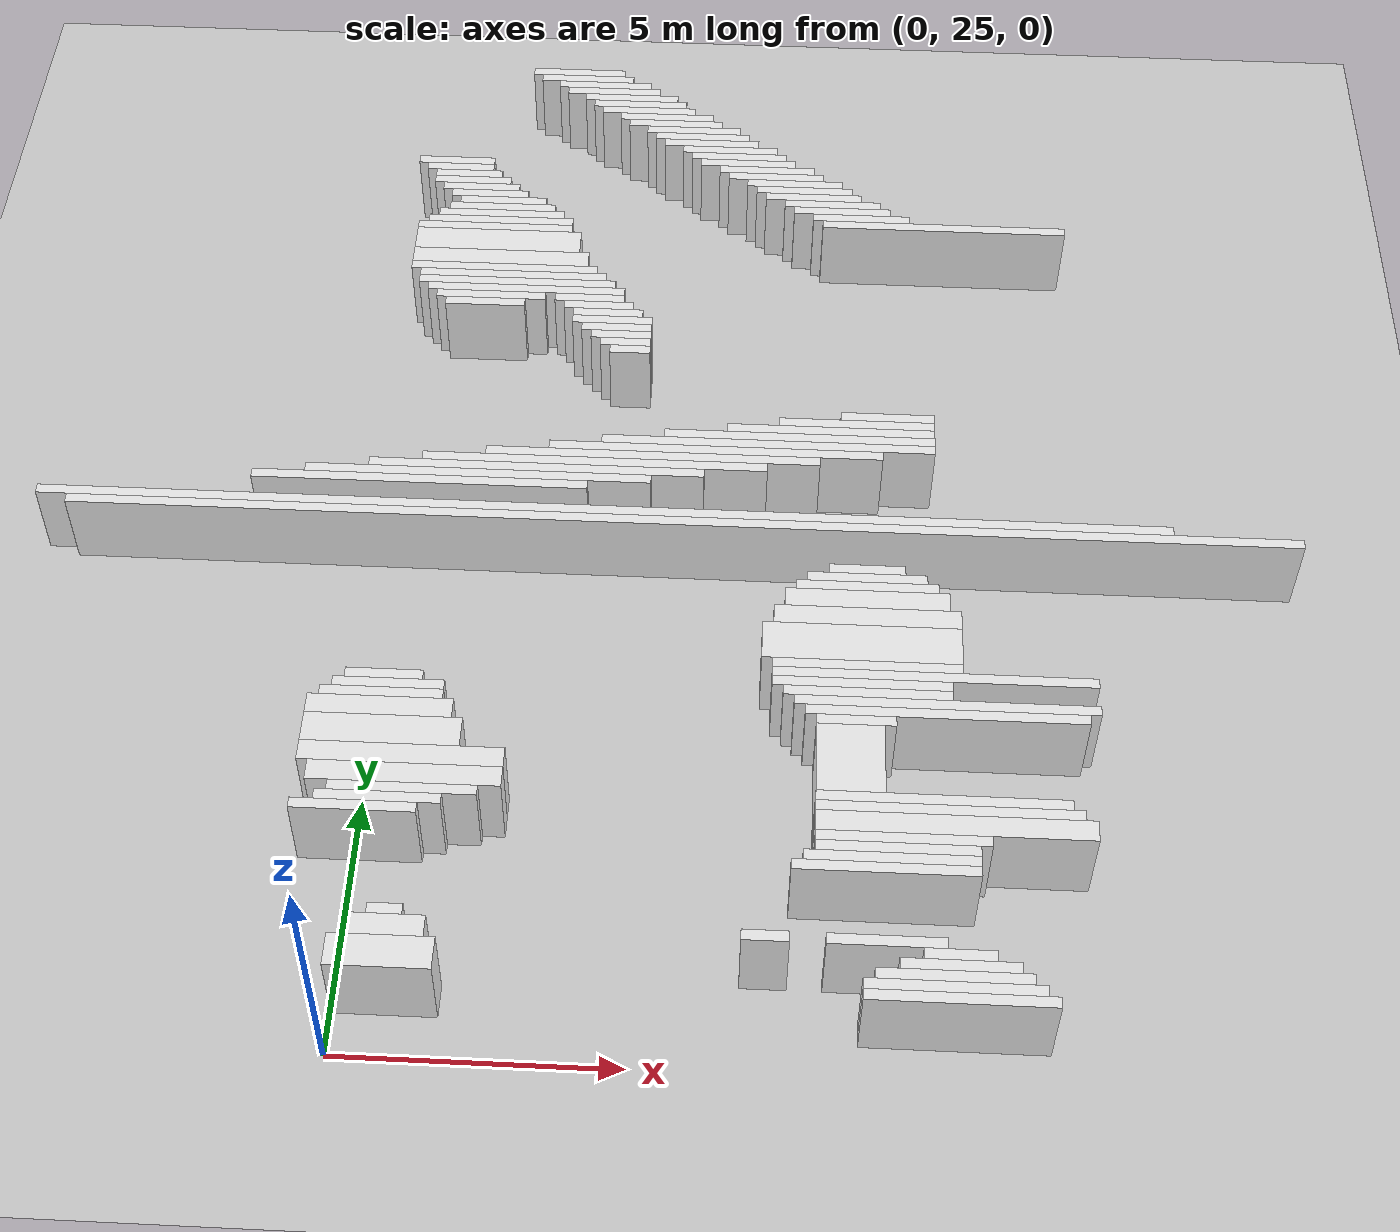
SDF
<sdf version="1.7">
 <world name="default">
  <model name="ground_plane">
   <static>1</static>
   <link name="link">
    <collision name="collision">
     <geometry><plane><normal>0 0 1</normal><size>120 120</size></plane></geometry>
    </collision>
    <visual name="visual">
     <geometry><plane><normal>0 0 1</normal><size>120 120</size></plane></geometry>
     <material>
      <script><uri>file://media/materials/scripts/gazebo.material</uri><name>Gazebo/Grey</name></script>
     </material>
    </visual>
   </link>
  </model>
  <model name="random_complex_01_model">
   <static>1</static>
   <link name="obs_5">
    <pose>2.6000 48.3000 0.8000 0 0 0</pose>
    <collision name="obs_5_col"><geometry><box><size>2.0000 0.2000 1.6000</size></box></geometry></collision>
    <visual name="obs_5_vis">
     <geometry><box><size>2.0000 0.2000 1.6000</size></box></geometry>
     <material>
      <script><uri>file://media/materials/scripts/gazebo.material</uri><name>Gazebo/White</name></script>
     </material>
    </visual>
   </link>
   <link name="obs_12">
    <pose>2.8000 48.1000 0.8000 0 0 0</pose>
    <collision name="obs_12_col"><geometry><box><size>2.0000 0.2000 1.6000</size></box></geometry></collision>
    <visual name="obs_12_vis">
     <geometry><box><size>2.0000 0.2000 1.6000</size></box></geometry>
     <material>
      <script><uri>file://media/materials/scripts/gazebo.material</uri><name>Gazebo/White</name></script>
     </material>
    </visual>
   </link>
   <link name="obs_20">
    <pose>3.2000 47.9000 0.8000 0 0 0</pose>
    <collision name="obs_20_col"><geometry><box><size>2.0000 0.2000 1.6000</size></box></geometry></collision>
    <visual name="obs_20_vis">
     <geometry><box><size>2.0000 0.2000 1.6000</size></box></geometry>
     <material>
      <script><uri>file://media/materials/scripts/gazebo.material</uri><name>Gazebo/White</name></script>
     </material>
    </visual>
   </link>
   <link name="obs_26">
    <pose>3.4000 47.7000 0.8000 0 0 0</pose>
    <collision name="obs_26_col"><geometry><box><size>2.0000 0.2000 1.6000</size></box></geometry></collision>
    <visual name="obs_26_vis">
     <geometry><box><size>2.0000 0.2000 1.6000</size></box></geometry>
     <material>
      <script><uri>file://media/materials/scripts/gazebo.material</uri><name>Gazebo/White</name></script>
     </material>
    </visual>
   </link>
   <link name="obs_33">
    <pose>3.8000 47.5000 0.8000 0 0 0</pose>
    <collision name="obs_33_col"><geometry><box><size>2.0000 0.2000 1.6000</size></box></geometry></collision>
    <visual name="obs_33_vis">
     <geometry><box><size>2.0000 0.2000 1.6000</size></box></geometry>
     <material>
      <script><uri>file://media/materials/scripts/gazebo.material</uri><name>Gazebo/White</name></script>
     </material>
    </visual>
   </link>
   <link name="obs_40">
    <pose>4.0000 47.3000 0.8000 0 0 0</pose>
    <collision name="obs_40_col"><geometry><box><size>2.0000 0.2000 1.6000</size></box></geometry></collision>
    <visual name="obs_40_vis">
     <geometry><box><size>2.0000 0.2000 1.6000</size></box></geometry>
     <material>
      <script><uri>file://media/materials/scripts/gazebo.material</uri><name>Gazebo/White</name></script>
     </material>
    </visual>
   </link>
   <link name="obs_46">
    <pose>4.2000 47.1000 0.8000 0 0 0</pose>
    <collision name="obs_46_col"><geometry><box><size>2.0000 0.2000 1.6000</size></box></geometry></collision>
    <visual name="obs_46_vis">
     <geometry><box><size>2.0000 0.2000 1.6000</size></box></geometry>
     <material>
      <script><uri>file://media/materials/scripts/gazebo.material</uri><name>Gazebo/White</name></script>
     </material>
    </visual>
   </link>
   <link name="obs_53">
    <pose>4.6000 46.9000 0.8000 0 0 0</pose>
    <collision name="obs_53_col"><geometry><box><size>2.0000 0.2000 1.6000</size></box></geometry></collision>
    <visual name="obs_53_vis">
     <geometry><box><size>2.0000 0.2000 1.6000</size></box></geometry>
     <material>
      <script><uri>file://media/materials/scripts/gazebo.material</uri><name>Gazebo/White</name></script>
     </material>
    </visual>
   </link>
   <link name="obs_60">
    <pose>4.8000 46.7000 0.8000 0 0 0</pose>
    <collision name="obs_60_col"><geometry><box><size>2.0000 0.2000 1.6000</size></box></geometry></collision>
    <visual name="obs_60_vis">
     <geometry><box><size>2.0000 0.2000 1.6000</size></box></geometry>
     <material>
      <script><uri>file://media/materials/scripts/gazebo.material</uri><name>Gazebo/White</name></script>
     </material>
    </visual>
   </link>
   <link name="obs_67">
    <pose>5.2000 46.5000 0.8000 0 0 0</pose>
    <collision name="obs_67_col"><geometry><box><size>2.0000 0.2000 1.6000</size></box></geometry></collision>
    <visual name="obs_67_vis">
     <geometry><box><size>2.0000 0.2000 1.6000</size></box></geometry>
     <material>
      <script><uri>file://media/materials/scripts/gazebo.material</uri><name>Gazebo/White</name></script>
     </material>
    </visual>
   </link>
   <link name="obs_74">
    <pose>5.4000 46.3000 0.8000 0 0 0</pose>
    <collision name="obs_74_col"><geometry><box><size>2.0000 0.2000 1.6000</size></box></geometry></collision>
    <visual name="obs_74_vis">
     <geometry><box><size>2.0000 0.2000 1.6000</size></box></geometry>
     <material>
      <script><uri>file://media/materials/scripts/gazebo.material</uri><name>Gazebo/White</name></script>
     </material>
    </visual>
   </link>
   <link name="obs_84">
    <pose>5.6000 46.1000 0.8000 0 0 0</pose>
    <collision name="obs_84_col"><geometry><box><size>2.0000 0.2000 1.6000</size></box></geometry></collision>
    <visual name="obs_84_vis">
     <geometry><box><size>2.0000 0.2000 1.6000</size></box></geometry>
     <material>
      <script><uri>file://media/materials/scripts/gazebo.material</uri><name>Gazebo/White</name></script>
     </material>
    </visual>
   </link>
   <link name="obs_94">
    <pose>6.0000 45.9000 0.8000 0 0 0</pose>
    <collision name="obs_94_col"><geometry><box><size>2.0000 0.2000 1.6000</size></box></geometry></collision>
    <visual name="obs_94_vis">
     <geometry><box><size>2.0000 0.2000 1.6000</size></box></geometry>
     <material>
      <script><uri>file://media/materials/scripts/gazebo.material</uri><name>Gazebo/White</name></script>
     </material>
    </visual>
   </link>
   <link name="obs_102">
    <pose>6.2000 45.7000 0.8000 0 0 0</pose>
    <collision name="obs_102_col"><geometry><box><size>2.0000 0.2000 1.6000</size></box></geometry></collision>
    <visual name="obs_102_vis">
     <geometry><box><size>2.0000 0.2000 1.6000</size></box></geometry>
     <material>
      <script><uri>file://media/materials/scripts/gazebo.material</uri><name>Gazebo/White</name></script>
     </material>
    </visual>
   </link>
   <link name="obs_113">
    <pose>6.4000 45.5000 0.8000 0 0 0</pose>
    <collision name="obs_113_col"><geometry><box><size>2.0000 0.2000 1.6000</size></box></geometry></collision>
    <visual name="obs_113_vis">
     <geometry><box><size>2.0000 0.2000 1.6000</size></box></geometry>
     <material>
      <script><uri>file://media/materials/scripts/gazebo.material</uri><name>Gazebo/White</name></script>
     </material>
    </visual>
   </link>
   <link name="obs_120">
    <pose>0.2000 45.3000 0.8000 0 0 0</pose>
    <collision name="obs_120_col"><geometry><box><size>1.6000 0.2000 1.6000</size></box></geometry></collision>
    <visual name="obs_120_vis">
     <geometry><box><size>1.6000 0.2000 1.6000</size></box></geometry>
     <material>
      <script><uri>file://media/materials/scripts/gazebo.material</uri><name>Gazebo/White</name></script>
     </material>
    </visual>
   </link>
   <link name="obs_121">
    <pose>6.8000 45.3000 0.8000 0 0 0</pose>
    <collision name="obs_121_col"><geometry><box><size>2.0000 0.2000 1.6000</size></box></geometry></collision>
    <visual name="obs_121_vis">
     <geometry><box><size>2.0000 0.2000 1.6000</size></box></geometry>
     <material>
      <script><uri>file://media/materials/scripts/gazebo.material</uri><name>Gazebo/White</name></script>
     </material>
    </visual>
   </link>
   <link name="obs_130">
    <pose>0.3000 45.1000 0.8000 0 0 0</pose>
    <collision name="obs_130_col"><geometry><box><size>1.4000 0.2000 1.6000</size></box></geometry></collision>
    <visual name="obs_130_vis">
     <geometry><box><size>1.4000 0.2000 1.6000</size></box></geometry>
     <material>
      <script><uri>file://media/materials/scripts/gazebo.material</uri><name>Gazebo/White</name></script>
     </material>
    </visual>
   </link>
   <link name="obs_131">
    <pose>7.0000 45.1000 0.8000 0 0 0</pose>
    <collision name="obs_131_col"><geometry><box><size>2.0000 0.2000 1.6000</size></box></geometry></collision>
    <visual name="obs_131_vis">
     <geometry><box><size>2.0000 0.2000 1.6000</size></box></geometry>
     <material>
      <script><uri>file://media/materials/scripts/gazebo.material</uri><name>Gazebo/White</name></script>
     </material>
    </visual>
   </link>
   <link name="obs_138">
    <pose>0.5000 44.9000 0.8000 0 0 0</pose>
    <collision name="obs_138_col"><geometry><box><size>1.4000 0.2000 1.6000</size></box></geometry></collision>
    <visual name="obs_138_vis">
     <geometry><box><size>1.4000 0.2000 1.6000</size></box></geometry>
     <material>
      <script><uri>file://media/materials/scripts/gazebo.material</uri><name>Gazebo/White</name></script>
     </material>
    </visual>
   </link>
   <link name="obs_139">
    <pose>7.4000 44.9000 0.8000 0 0 0</pose>
    <collision name="obs_139_col"><geometry><box><size>2.0000 0.2000 1.6000</size></box></geometry></collision>
    <visual name="obs_139_vis">
     <geometry><box><size>2.0000 0.2000 1.6000</size></box></geometry>
     <material>
      <script><uri>file://media/materials/scripts/gazebo.material</uri><name>Gazebo/White</name></script>
     </material>
    </visual>
   </link>
   <link name="obs_147">
    <pose>0.6000 44.7000 0.8000 0 0 0</pose>
    <collision name="obs_147_col"><geometry><box><size>1.6000 0.2000 1.6000</size></box></geometry></collision>
    <visual name="obs_147_vis">
     <geometry><box><size>1.6000 0.2000 1.6000</size></box></geometry>
     <material>
      <script><uri>file://media/materials/scripts/gazebo.material</uri><name>Gazebo/White</name></script>
     </material>
    </visual>
   </link>
   <link name="obs_148">
    <pose>7.6000 44.7000 0.8000 0 0 0</pose>
    <collision name="obs_148_col"><geometry><box><size>2.0000 0.2000 1.6000</size></box></geometry></collision>
    <visual name="obs_148_vis">
     <geometry><box><size>2.0000 0.2000 1.6000</size></box></geometry>
     <material>
      <script><uri>file://media/materials/scripts/gazebo.material</uri><name>Gazebo/White</name></script>
     </material>
    </visual>
   </link>
   <link name="obs_154">
    <pose>0.8000 44.5000 0.8000 0 0 0</pose>
    <collision name="obs_154_col"><geometry><box><size>1.6000 0.2000 1.6000</size></box></geometry></collision>
    <visual name="obs_154_vis">
     <geometry><box><size>1.6000 0.2000 1.6000</size></box></geometry>
     <material>
      <script><uri>file://media/materials/scripts/gazebo.material</uri><name>Gazebo/White</name></script>
     </material>
    </visual>
   </link>
   <link name="obs_155">
    <pose>7.8000 44.5000 0.8000 0 0 0</pose>
    <collision name="obs_155_col"><geometry><box><size>2.0000 0.2000 1.6000</size></box></geometry></collision>
    <visual name="obs_155_vis">
     <geometry><box><size>2.0000 0.2000 1.6000</size></box></geometry>
     <material>
      <script><uri>file://media/materials/scripts/gazebo.material</uri><name>Gazebo/White</name></script>
     </material>
    </visual>
   </link>
   <link name="obs_160">
    <pose>1.0000 44.3000 0.8000 0 0 0</pose>
    <collision name="obs_160_col"><geometry><box><size>1.6000 0.2000 1.6000</size></box></geometry></collision>
    <visual name="obs_160_vis">
     <geometry><box><size>1.6000 0.2000 1.6000</size></box></geometry>
     <material>
      <script><uri>file://media/materials/scripts/gazebo.material</uri><name>Gazebo/White</name></script>
     </material>
    </visual>
   </link>
   <link name="obs_161">
    <pose>8.2000 44.3000 0.8000 0 0 0</pose>
    <collision name="obs_161_col"><geometry><box><size>2.0000 0.2000 1.6000</size></box></geometry></collision>
    <visual name="obs_161_vis">
     <geometry><box><size>2.0000 0.2000 1.6000</size></box></geometry>
     <material>
      <script><uri>file://media/materials/scripts/gazebo.material</uri><name>Gazebo/White</name></script>
     </material>
    </visual>
   </link>
   <link name="obs_166">
    <pose>1.3000 44.1000 0.8000 0 0 0</pose>
    <collision name="obs_166_col"><geometry><box><size>1.8000 0.2000 1.6000</size></box></geometry></collision>
    <visual name="obs_166_vis">
     <geometry><box><size>1.8000 0.2000 1.6000</size></box></geometry>
     <material>
      <script><uri>file://media/materials/scripts/gazebo.material</uri><name>Gazebo/White</name></script>
     </material>
    </visual>
   </link>
   <link name="obs_167">
    <pose>8.4000 44.1000 0.8000 0 0 0</pose>
    <collision name="obs_167_col"><geometry><box><size>2.0000 0.2000 1.6000</size></box></geometry></collision>
    <visual name="obs_167_vis">
     <geometry><box><size>2.0000 0.2000 1.6000</size></box></geometry>
     <material>
      <script><uri>file://media/materials/scripts/gazebo.material</uri><name>Gazebo/White</name></script>
     </material>
    </visual>
   </link>
   <link name="obs_174">
    <pose>1.3000 43.9000 0.8000 0 0 0</pose>
    <collision name="obs_174_col"><geometry><box><size>2.2000 0.2000 1.6000</size></box></geometry></collision>
    <visual name="obs_174_vis">
     <geometry><box><size>2.2000 0.2000 1.6000</size></box></geometry>
     <material>
      <script><uri>file://media/materials/scripts/gazebo.material</uri><name>Gazebo/White</name></script>
     </material>
    </visual>
   </link>
   <link name="obs_175">
    <pose>8.8000 43.9000 0.8000 0 0 0</pose>
    <collision name="obs_175_col"><geometry><box><size>2.0000 0.2000 1.6000</size></box></geometry></collision>
    <visual name="obs_175_vis">
     <geometry><box><size>2.0000 0.2000 1.6000</size></box></geometry>
     <material>
      <script><uri>file://media/materials/scripts/gazebo.material</uri><name>Gazebo/White</name></script>
     </material>
    </visual>
   </link>
   <link name="obs_182">
    <pose>1.3000 43.7000 0.8000 0 0 0</pose>
    <collision name="obs_182_col"><geometry><box><size>2.6000 0.2000 1.6000</size></box></geometry></collision>
    <visual name="obs_182_vis">
     <geometry><box><size>2.6000 0.2000 1.6000</size></box></geometry>
     <material>
      <script><uri>file://media/materials/scripts/gazebo.material</uri><name>Gazebo/White</name></script>
     </material>
    </visual>
   </link>
   <link name="obs_183">
    <pose>10.5000 43.7000 0.8000 0 0 0</pose>
    <collision name="obs_183_col"><geometry><box><size>5.0000 0.2000 1.6000</size></box></geometry></collision>
    <visual name="obs_183_vis">
     <geometry><box><size>5.0000 0.2000 1.6000</size></box></geometry>
     <material>
      <script><uri>file://media/materials/scripts/gazebo.material</uri><name>Gazebo/White</name></script>
     </material>
    </visual>
   </link>
   <link name="obs_189">
    <pose>1.3000 43.5000 0.8000 0 0 0</pose>
    <collision name="obs_189_col"><geometry><box><size>3.0000 0.2000 1.6000</size></box></geometry></collision>
    <visual name="obs_189_vis">
     <geometry><box><size>3.0000 0.2000 1.6000</size></box></geometry>
     <material>
      <script><uri>file://media/materials/scripts/gazebo.material</uri><name>Gazebo/White</name></script>
     </material>
    </visual>
   </link>
   <link name="obs_196">
    <pose>1.2000 43.3000 0.8000 0 0 0</pose>
    <collision name="obs_196_col"><geometry><box><size>3.2000 0.2000 1.6000</size></box></geometry></collision>
    <visual name="obs_196_vis">
     <geometry><box><size>3.2000 0.2000 1.6000</size></box></geometry>
     <material>
      <script><uri>file://media/materials/scripts/gazebo.material</uri><name>Gazebo/White</name></script>
     </material>
    </visual>
   </link>
   <link name="obs_211">
    <pose>1.3000 42.9000 0.8000 0 0 0</pose>
    <collision name="obs_211_col"><geometry><box><size>3.4000 0.6000 1.6000</size></box></geometry></collision>
    <visual name="obs_211_vis">
     <geometry><box><size>3.4000 0.6000 1.6000</size></box></geometry>
     <material>
      <script><uri>file://media/materials/scripts/gazebo.material</uri><name>Gazebo/White</name></script>
     </material>
    </visual>
   </link>
   <link name="obs_225">
    <pose>1.4000 42.4000 0.8000 0 0 0</pose>
    <collision name="obs_225_col"><geometry><box><size>3.6000 0.4000 1.6000</size></box></geometry></collision>
    <visual name="obs_225_vis">
     <geometry><box><size>3.6000 0.4000 1.6000</size></box></geometry>
     <material>
      <script><uri>file://media/materials/scripts/gazebo.material</uri><name>Gazebo/White</name></script>
     </material>
    </visual>
   </link>
   <link name="obs_233">
    <pose>1.5000 42.1000 0.8000 0 0 0</pose>
    <collision name="obs_233_col"><geometry><box><size>3.8000 0.2000 1.6000</size></box></geometry></collision>
    <visual name="obs_233_vis">
     <geometry><box><size>3.8000 0.2000 1.6000</size></box></geometry>
     <material>
      <script><uri>file://media/materials/scripts/gazebo.material</uri><name>Gazebo/White</name></script>
     </material>
    </visual>
   </link>
   <link name="obs_240">
    <pose>1.7000 41.9000 0.8000 0 0 0</pose>
    <collision name="obs_240_col"><geometry><box><size>3.8000 0.2000 1.6000</size></box></geometry></collision>
    <visual name="obs_240_vis">
     <geometry><box><size>3.8000 0.2000 1.6000</size></box></geometry>
     <material>
      <script><uri>file://media/materials/scripts/gazebo.material</uri><name>Gazebo/White</name></script>
     </material>
    </visual>
   </link>
   <link name="obs_244">
    <pose>1.8000 41.7000 0.8000 0 0 0</pose>
    <collision name="obs_244_col"><geometry><box><size>4.0000 0.2000 1.6000</size></box></geometry></collision>
    <visual name="obs_244_vis">
     <geometry><box><size>4.0000 0.2000 1.6000</size></box></geometry>
     <material>
      <script><uri>file://media/materials/scripts/gazebo.material</uri><name>Gazebo/White</name></script>
     </material>
    </visual>
   </link>
   <link name="obs_252">
    <pose>2.0000 41.5000 0.8000 0 0 0</pose>
    <collision name="obs_252_col"><geometry><box><size>4.0000 0.2000 1.6000</size></box></geometry></collision>
    <visual name="obs_252_vis">
     <geometry><box><size>4.0000 0.2000 1.6000</size></box></geometry>
     <material>
      <script><uri>file://media/materials/scripts/gazebo.material</uri><name>Gazebo/White</name></script>
     </material>
    </visual>
   </link>
   <link name="obs_258">
    <pose>1.3000 41.3000 0.8000 0 0 0</pose>
    <collision name="obs_258_col"><geometry><box><size>2.2000 0.2000 1.6000</size></box></geometry></collision>
    <visual name="obs_258_vis">
     <geometry><box><size>2.2000 0.2000 1.6000</size></box></geometry>
     <material>
      <script><uri>file://media/materials/scripts/gazebo.material</uri><name>Gazebo/White</name></script>
     </material>
    </visual>
   </link>
   <link name="obs_259">
    <pose>3.3000 41.3000 0.8000 0 0 0</pose>
    <collision name="obs_259_col"><geometry><box><size>1.4000 0.2000 1.6000</size></box></geometry></collision>
    <visual name="obs_259_vis">
     <geometry><box><size>1.4000 0.2000 1.6000</size></box></geometry>
     <material>
      <script><uri>file://media/materials/scripts/gazebo.material</uri><name>Gazebo/White</name></script>
     </material>
    </visual>
   </link>
   <link name="obs_267">
    <pose>1.2000 41.1000 0.8000 0 0 0</pose>
    <collision name="obs_267_col"><geometry><box><size>1.6000 0.2000 1.6000</size></box></geometry></collision>
    <visual name="obs_267_vis">
     <geometry><box><size>1.6000 0.2000 1.6000</size></box></geometry>
     <material>
      <script><uri>file://media/materials/scripts/gazebo.material</uri><name>Gazebo/White</name></script>
     </material>
    </visual>
   </link>
   <link name="obs_268">
    <pose>3.5000 41.1000 0.8000 0 0 0</pose>
    <collision name="obs_268_col"><geometry><box><size>1.4000 0.2000 1.6000</size></box></geometry></collision>
    <visual name="obs_268_vis">
     <geometry><box><size>1.4000 0.2000 1.6000</size></box></geometry>
     <material>
      <script><uri>file://media/materials/scripts/gazebo.material</uri><name>Gazebo/White</name></script>
     </material>
    </visual>
   </link>
   <link name="obs_274">
    <pose>3.7000 40.9000 0.8000 0 0 0</pose>
    <collision name="obs_274_col"><geometry><box><size>1.4000 0.2000 1.6000</size></box></geometry></collision>
    <visual name="obs_274_vis">
     <geometry><box><size>1.4000 0.2000 1.6000</size></box></geometry>
     <material>
      <script><uri>file://media/materials/scripts/gazebo.material</uri><name>Gazebo/White</name></script>
     </material>
    </visual>
   </link>
   <link name="obs_280">
    <pose>3.8000 40.7000 0.8000 0 0 0</pose>
    <collision name="obs_280_col"><geometry><box><size>1.6000 0.2000 1.6000</size></box></geometry></collision>
    <visual name="obs_280_vis">
     <geometry><box><size>1.6000 0.2000 1.6000</size></box></geometry>
     <material>
      <script><uri>file://media/materials/scripts/gazebo.material</uri><name>Gazebo/White</name></script>
     </material>
    </visual>
   </link>
   <link name="obs_286">
    <pose>3.9000 40.5000 0.8000 0 0 0</pose>
    <collision name="obs_286_col"><geometry><box><size>1.4000 0.2000 1.6000</size></box></geometry></collision>
    <visual name="obs_286_vis">
     <geometry><box><size>1.4000 0.2000 1.6000</size></box></geometry>
     <material>
      <script><uri>file://media/materials/scripts/gazebo.material</uri><name>Gazebo/White</name></script>
     </material>
    </visual>
   </link>
   <link name="obs_294">
    <pose>4.0000 40.3000 0.8000 0 0 0</pose>
    <collision name="obs_294_col"><geometry><box><size>1.2000 0.2000 1.6000</size></box></geometry></collision>
    <visual name="obs_294_vis">
     <geometry><box><size>1.2000 0.2000 1.6000</size></box></geometry>
     <material>
      <script><uri>file://media/materials/scripts/gazebo.material</uri><name>Gazebo/White</name></script>
     </material>
    </visual>
   </link>
   <link name="obs_298">
    <pose>4.1000 40.1000 0.8000 0 0 0</pose>
    <collision name="obs_298_col"><geometry><box><size>1.0000 0.2000 1.6000</size></box></geometry></collision>
    <visual name="obs_298_vis">
     <geometry><box><size>1.0000 0.2000 1.6000</size></box></geometry>
     <material>
      <script><uri>file://media/materials/scripts/gazebo.material</uri><name>Gazebo/White</name></script>
     </material>
    </visual>
   </link>
   <link name="obs_303">
    <pose>4.2000 39.9000 0.8000 0 0 0</pose>
    <collision name="obs_303_col"><geometry><box><size>0.8000 0.2000 1.6000</size></box></geometry></collision>
    <visual name="obs_303_vis">
     <geometry><box><size>0.8000 0.2000 1.6000</size></box></geometry>
     <material>
      <script><uri>file://media/materials/scripts/gazebo.material</uri><name>Gazebo/White</name></script>
     </material>
    </visual>
   </link>
   <link name="obs_327">
    <pose>9.3000 38.3000 0.8000 0 0 0</pose>
    <collision name="obs_327_col"><geometry><box><size>1.8000 0.2000 1.6000</size></box></geometry></collision>
    <visual name="obs_327_vis">
     <geometry><box><size>1.8000 0.2000 1.6000</size></box></geometry>
     <material>
      <script><uri>file://media/materials/scripts/gazebo.material</uri><name>Gazebo/White</name></script>
     </material>
    </visual>
   </link>
   <link name="obs_333">
    <pose>8.7000 38.1000 0.8000 0 0 0</pose>
    <collision name="obs_333_col"><geometry><box><size>3.0000 0.2000 1.6000</size></box></geometry></collision>
    <visual name="obs_333_vis">
     <geometry><box><size>3.0000 0.2000 1.6000</size></box></geometry>
     <material>
      <script><uri>file://media/materials/scripts/gazebo.material</uri><name>Gazebo/White</name></script>
     </material>
    </visual>
   </link>
   <link name="obs_342">
    <pose>8.2000 37.9000 0.8000 0 0 0</pose>
    <collision name="obs_342_col"><geometry><box><size>4.0000 0.2000 1.6000</size></box></geometry></collision>
    <visual name="obs_342_vis">
     <geometry><box><size>4.0000 0.2000 1.6000</size></box></geometry>
     <material>
      <script><uri>file://media/materials/scripts/gazebo.material</uri><name>Gazebo/White</name></script>
     </material>
    </visual>
   </link>
   <link name="obs_347">
    <pose>7.6000 37.7000 0.8000 0 0 0</pose>
    <collision name="obs_347_col"><geometry><box><size>5.2000 0.2000 1.6000</size></box></geometry></collision>
    <visual name="obs_347_vis">
     <geometry><box><size>5.2000 0.2000 1.6000</size></box></geometry>
     <material>
      <script><uri>file://media/materials/scripts/gazebo.material</uri><name>Gazebo/White</name></script>
     </material>
    </visual>
   </link>
   <link name="obs_356">
    <pose>7.0000 37.5000 0.8000 0 0 0</pose>
    <collision name="obs_356_col"><geometry><box><size>6.4000 0.2000 1.6000</size></box></geometry></collision>
    <visual name="obs_356_vis">
     <geometry><box><size>6.4000 0.2000 1.6000</size></box></geometry>
     <material>
      <script><uri>file://media/materials/scripts/gazebo.material</uri><name>Gazebo/White</name></script>
     </material>
    </visual>
   </link>
   <link name="obs_363">
    <pose>6.0000 37.3000 0.8000 0 0 0</pose>
    <collision name="obs_363_col"><geometry><box><size>6.4000 0.2000 1.6000</size></box></geometry></collision>
    <visual name="obs_363_vis">
     <geometry><box><size>6.4000 0.2000 1.6000</size></box></geometry>
     <material>
      <script><uri>file://media/materials/scripts/gazebo.material</uri><name>Gazebo/White</name></script>
     </material>
    </visual>
   </link>
   <link name="obs_369">
    <pose>4.8000 37.1000 0.8000 0 0 0</pose>
    <collision name="obs_369_col"><geometry><box><size>6.4000 0.2000 1.6000</size></box></geometry></collision>
    <visual name="obs_369_vis">
     <geometry><box><size>6.4000 0.2000 1.6000</size></box></geometry>
     <material>
      <script><uri>file://media/materials/scripts/gazebo.material</uri><name>Gazebo/White</name></script>
     </material>
    </visual>
   </link>
   <link name="obs_375">
    <pose>3.7000 36.9000 0.8000 0 0 0</pose>
    <collision name="obs_375_col"><geometry><box><size>6.6000 0.2000 1.6000</size></box></geometry></collision>
    <visual name="obs_375_vis">
     <geometry><box><size>6.6000 0.2000 1.6000</size></box></geometry>
     <material>
      <script><uri>file://media/materials/scripts/gazebo.material</uri><name>Gazebo/White</name></script>
     </material>
    </visual>
   </link>
   <link name="obs_382">
    <pose>2.6000 36.7000 0.8000 0 0 0</pose>
    <collision name="obs_382_col"><geometry><box><size>6.4000 0.2000 1.6000</size></box></geometry></collision>
    <visual name="obs_382_vis">
     <geometry><box><size>6.4000 0.2000 1.6000</size></box></geometry>
     <material>
      <script><uri>file://media/materials/scripts/gazebo.material</uri><name>Gazebo/White</name></script>
     </material>
    </visual>
   </link>
   <link name="obs_389">
    <pose>1.5000 36.5000 0.8000 0 0 0</pose>
    <collision name="obs_389_col"><geometry><box><size>6.6000 0.2000 1.6000</size></box></geometry></collision>
    <visual name="obs_389_vis">
     <geometry><box><size>6.6000 0.2000 1.6000</size></box></geometry>
     <material>
      <script><uri>file://media/materials/scripts/gazebo.material</uri><name>Gazebo/White</name></script>
     </material>
    </visual>
   </link>
   <link name="obs_398">
    <pose>0.4000 36.3000 0.8000 0 0 0</pose>
    <collision name="obs_398_col"><geometry><box><size>6.4000 0.2000 1.6000</size></box></geometry></collision>
    <visual name="obs_398_vis">
     <geometry><box><size>6.4000 0.2000 1.6000</size></box></geometry>
     <material>
      <script><uri>file://media/materials/scripts/gazebo.material</uri><name>Gazebo/White</name></script>
     </material>
    </visual>
   </link>
   <link name="obs_428">
    <pose>3.9000 35.7000 0.8000 0 0 0</pose>
    <collision name="obs_428_col"><geometry><box><size>21.4000 0.2000 1.6000</size></box></geometry></collision>
    <visual name="obs_428_vis">
     <geometry><box><size>21.4000 0.2000 1.6000</size></box></geometry>
     <material>
      <script><uri>file://media/materials/scripts/gazebo.material</uri><name>Gazebo/White</name></script>
     </material>
    </visual>
   </link>
   <link name="obs_433">
    <pose>5.4000 35.5000 0.8000 0 0 0</pose>
    <collision name="obs_433_col"><geometry><box><size>23.2000 0.2000 1.6000</size></box></geometry></collision>
    <visual name="obs_433_vis">
     <geometry><box><size>23.2000 0.2000 1.6000</size></box></geometry>
     <material>
      <script><uri>file://media/materials/scripts/gazebo.material</uri><name>Gazebo/White</name></script>
     </material>
    </visual>
   </link>
   <link name="obs_469">
    <pose>8.9000 34.5000 0.8000 0 0 0</pose>
    <collision name="obs_469_col"><geometry><box><size>1.4000 0.2000 1.6000</size></box></geometry></collision>
    <visual name="obs_469_vis">
     <geometry><box><size>1.4000 0.2000 1.6000</size></box></geometry>
     <material>
      <script><uri>file://media/materials/scripts/gazebo.material</uri><name>Gazebo/White</name></script>
     </material>
    </visual>
   </link>
   <link name="obs_480">
    <pose>8.9000 34.3000 0.8000 0 0 0</pose>
    <collision name="obs_480_col"><geometry><box><size>2.2000 0.2000 1.6000</size></box></geometry></collision>
    <visual name="obs_480_vis">
     <geometry><box><size>2.2000 0.2000 1.6000</size></box></geometry>
     <material>
      <script><uri>file://media/materials/scripts/gazebo.material</uri><name>Gazebo/White</name></script>
     </material>
    </visual>
   </link>
   <link name="obs_490">
    <pose>8.9000 34.1000 0.8000 0 0 0</pose>
    <collision name="obs_490_col"><geometry><box><size>2.6000 0.2000 1.6000</size></box></geometry></collision>
    <visual name="obs_490_vis">
     <geometry><box><size>2.6000 0.2000 1.6000</size></box></geometry>
     <material>
      <script><uri>file://media/materials/scripts/gazebo.material</uri><name>Gazebo/White</name></script>
     </material>
    </visual>
   </link>
   <link name="obs_504">
    <pose>8.9000 33.8000 0.8000 0 0 0</pose>
    <collision name="obs_504_col"><geometry><box><size>3.0000 0.4000 1.6000</size></box></geometry></collision>
    <visual name="obs_504_vis">
     <geometry><box><size>3.0000 0.4000 1.6000</size></box></geometry>
     <material>
      <script><uri>file://media/materials/scripts/gazebo.material</uri><name>Gazebo/White</name></script>
     </material>
    </visual>
   </link>
   <link name="obs_523">
    <pose>8.9000 33.4000 0.8000 0 0 0</pose>
    <collision name="obs_523_col"><geometry><box><size>3.4000 0.4000 1.6000</size></box></geometry></collision>
    <visual name="obs_523_vis">
     <geometry><box><size>3.4000 0.4000 1.6000</size></box></geometry>
     <material>
      <script><uri>file://media/materials/scripts/gazebo.material</uri><name>Gazebo/White</name></script>
     </material>
    </visual>
   </link>
   <link name="obs_551">
    <pose>8.8000 32.8000 0.8000 0 0 0</pose>
    <collision name="obs_551_col"><geometry><box><size>3.6000 0.8000 1.6000</size></box></geometry></collision>
    <visual name="obs_551_vis">
     <geometry><box><size>3.6000 0.8000 1.6000</size></box></geometry>
     <material>
      <script><uri>file://media/materials/scripts/gazebo.material</uri><name>Gazebo/White</name></script>
     </material>
    </visual>
   </link>
   <link name="obs_566">
    <pose>8.9000 32.3000 0.8000 0 0 0</pose>
    <collision name="obs_566_col"><geometry><box><size>3.4000 0.2000 1.6000</size></box></geometry></collision>
    <visual name="obs_566_vis">
     <geometry><box><size>3.4000 0.2000 1.6000</size></box></geometry>
     <material>
      <script><uri>file://media/materials/scripts/gazebo.material</uri><name>Gazebo/White</name></script>
     </material>
    </visual>
   </link>
   <link name="obs_575">
    <pose>10.1000 32.1000 0.8000 0 0 0</pose>
    <collision name="obs_575_col"><geometry><box><size>5.8000 0.2000 1.6000</size></box></geometry></collision>
    <visual name="obs_575_vis">
     <geometry><box><size>5.8000 0.2000 1.6000</size></box></geometry>
     <material>
      <script><uri>file://media/materials/scripts/gazebo.material</uri><name>Gazebo/White</name></script>
     </material>
    </visual>
   </link>
   <link name="obs_583">
    <pose>8.8000 31.9000 0.8000 0 0 0</pose>
    <collision name="obs_583_col"><geometry><box><size>3.2000 0.2000 1.6000</size></box></geometry></collision>
    <visual name="obs_583_vis">
     <geometry><box><size>3.2000 0.2000 1.6000</size></box></geometry>
     <material>
      <script><uri>file://media/materials/scripts/gazebo.material</uri><name>Gazebo/White</name></script>
     </material>
    </visual>
   </link>
   <link name="obs_593">
    <pose>0.3000 31.7000 0.8000 0 0 0</pose>
    <collision name="obs_593_col"><geometry><box><size>1.4000 0.2000 1.6000</size></box></geometry></collision>
    <visual name="obs_593_vis">
     <geometry><box><size>1.4000 0.2000 1.6000</size></box></geometry>
     <material>
      <script><uri>file://media/materials/scripts/gazebo.material</uri><name>Gazebo/White</name></script>
     </material>
    </visual>
   </link>
   <link name="obs_594">
    <pose>8.9000 31.7000 0.8000 0 0 0</pose>
    <collision name="obs_594_col"><geometry><box><size>3.0000 0.2000 1.6000</size></box></geometry></collision>
    <visual name="obs_594_vis">
     <geometry><box><size>3.0000 0.2000 1.6000</size></box></geometry>
     <material>
      <script><uri>file://media/materials/scripts/gazebo.material</uri><name>Gazebo/White</name></script>
     </material>
    </visual>
   </link>
   <link name="obs_601">
    <pose>0.4000 31.5000 0.8000 0 0 0</pose>
    <collision name="obs_601_col"><geometry><box><size>2.0000 0.2000 1.6000</size></box></geometry></collision>
    <visual name="obs_601_vis">
     <geometry><box><size>2.0000 0.2000 1.6000</size></box></geometry>
     <material>
      <script><uri>file://media/materials/scripts/gazebo.material</uri><name>Gazebo/White</name></script>
     </material>
    </visual>
   </link>
   <link name="obs_602">
    <pose>10.3000 31.5000 0.8000 0 0 0</pose>
    <collision name="obs_602_col"><geometry><box><size>5.4000 0.2000 1.6000</size></box></geometry></collision>
    <visual name="obs_602_vis">
     <geometry><box><size>5.4000 0.2000 1.6000</size></box></geometry>
     <material>
      <script><uri>file://media/materials/scripts/gazebo.material</uri><name>Gazebo/White</name></script>
     </material>
    </visual>
   </link>
   <link name="obs_607">
    <pose>0.3000 31.3000 0.8000 0 0 0</pose>
    <collision name="obs_607_col"><geometry><box><size>2.2000 0.2000 1.6000</size></box></geometry></collision>
    <visual name="obs_607_vis">
     <geometry><box><size>2.2000 0.2000 1.6000</size></box></geometry>
     <material>
      <script><uri>file://media/materials/scripts/gazebo.material</uri><name>Gazebo/White</name></script>
     </material>
    </visual>
   </link>
   <link name="obs_608">
    <pose>10.3000 31.3000 0.8000 0 0 0</pose>
    <collision name="obs_608_col"><geometry><box><size>5.0000 0.2000 1.6000</size></box></geometry></collision>
    <visual name="obs_608_vis">
     <geometry><box><size>5.0000 0.2000 1.6000</size></box></geometry>
     <material>
      <script><uri>file://media/materials/scripts/gazebo.material</uri><name>Gazebo/White</name></script>
     </material>
    </visual>
   </link>
   <link name="obs_613">
    <pose>8.7000 31.1000 0.8000 0 0 0</pose>
    <collision name="obs_613_col"><geometry><box><size>1.4000 0.2000 1.6000</size></box></geometry></collision>
    <visual name="obs_613_vis">
     <geometry><box><size>1.4000 0.2000 1.6000</size></box></geometry>
     <material>
      <script><uri>file://media/materials/scripts/gazebo.material</uri><name>Gazebo/White</name></script>
     </material>
    </visual>
   </link>
   <link name="obs_619">
    <pose>0.3000 31.0000 0.8000 0 0 0</pose>
    <collision name="obs_619_col"><geometry><box><size>2.6000 0.4000 1.6000</size></box></geometry></collision>
    <visual name="obs_619_vis">
     <geometry><box><size>2.6000 0.4000 1.6000</size></box></geometry>
     <material>
      <script><uri>file://media/materials/scripts/gazebo.material</uri><name>Gazebo/White</name></script>
     </material>
    </visual>
   </link>
   <link name="obs_633">
    <pose>0.4000 30.5000 0.8000 0 0 0</pose>
    <collision name="obs_633_col"><geometry><box><size>2.8000 0.6000 1.6000</size></box></geometry></collision>
    <visual name="obs_633_vis">
     <geometry><box><size>2.8000 0.6000 1.6000</size></box></geometry>
     <material>
      <script><uri>file://media/materials/scripts/gazebo.material</uri><name>Gazebo/White</name></script>
     </material>
    </visual>
   </link>
   <link name="obs_642">
    <pose>0.8000 30.0000 0.8000 0 0 0</pose>
    <collision name="obs_642_col"><geometry><box><size>3.6000 0.4000 1.6000</size></box></geometry></collision>
    <visual name="obs_642_vis">
     <geometry><box><size>3.6000 0.4000 1.6000</size></box></geometry>
     <material>
      <script><uri>file://media/materials/scripts/gazebo.material</uri><name>Gazebo/White</name></script>
     </material>
    </visual>
   </link>
   <link name="obs_649">
    <pose>8.6000 30.3000 0.8000 0 0 0</pose>
    <collision name="obs_649_col"><geometry><box><size>1.2000 1.4000 1.6000</size></box></geometry></collision>
    <visual name="obs_649_vis">
     <geometry><box><size>1.2000 1.4000 1.6000</size></box></geometry>
     <material>
      <script><uri>file://media/materials/scripts/gazebo.material</uri><name>Gazebo/White</name></script>
     </material>
    </visual>
   </link>
   <link name="obs_657">
    <pose>0.9000 29.6000 0.8000 0 0 0</pose>
    <collision name="obs_657_col"><geometry><box><size>3.4000 0.4000 1.6000</size></box></geometry></collision>
    <visual name="obs_657_vis">
     <geometry><box><size>3.4000 0.4000 1.6000</size></box></geometry>
     <material>
      <script><uri>file://media/materials/scripts/gazebo.material</uri><name>Gazebo/White</name></script>
     </material>
    </visual>
   </link>
   <link name="obs_662">
    <pose>10.2000 29.5000 0.8000 0 0 0</pose>
    <collision name="obs_662_col"><geometry><box><size>4.4000 0.2000 1.6000</size></box></geometry></collision>
    <visual name="obs_662_vis">
     <geometry><box><size>4.4000 0.2000 1.6000</size></box></geometry>
     <material>
      <script><uri>file://media/materials/scripts/gazebo.material</uri><name>Gazebo/White</name></script>
     </material>
    </visual>
   </link>
   <link name="obs_668">
    <pose>0.9000 29.3000 0.8000 0 0 0</pose>
    <collision name="obs_668_col"><geometry><box><size>2.6000 0.2000 1.6000</size></box></geometry></collision>
    <visual name="obs_668_vis">
     <geometry><box><size>2.6000 0.2000 1.6000</size></box></geometry>
     <material>
      <script><uri>file://media/materials/scripts/gazebo.material</uri><name>Gazebo/White</name></script>
     </material>
    </visual>
   </link>
   <link name="obs_669">
    <pose>10.3000 29.3000 0.8000 0 0 0</pose>
    <collision name="obs_669_col"><geometry><box><size>4.6000 0.2000 1.6000</size></box></geometry></collision>
    <visual name="obs_669_vis">
     <geometry><box><size>4.6000 0.2000 1.6000</size></box></geometry>
     <material>
      <script><uri>file://media/materials/scripts/gazebo.material</uri><name>Gazebo/White</name></script>
     </material>
    </visual>
   </link>
   <link name="obs_678">
    <pose>0.5000 29.1000 0.8000 0 0 0</pose>
    <collision name="obs_678_col"><geometry><box><size>2.2000 0.2000 1.6000</size></box></geometry></collision>
    <visual name="obs_678_vis">
     <geometry><box><size>2.2000 0.2000 1.6000</size></box></geometry>
     <material>
      <script><uri>file://media/materials/scripts/gazebo.material</uri><name>Gazebo/White</name></script>
     </material>
    </visual>
   </link>
   <link name="obs_681">
    <pose>10.4000 29.0000 0.8000 0 0 0</pose>
    <collision name="obs_681_col"><geometry><box><size>4.8000 0.4000 1.6000</size></box></geometry></collision>
    <visual name="obs_681_vis">
     <geometry><box><size>4.8000 0.4000 1.6000</size></box></geometry>
     <material>
      <script><uri>file://media/materials/scripts/gazebo.material</uri><name>Gazebo/White</name></script>
     </material>
    </visual>
   </link>
   <link name="obs_685">
    <pose>0.1000 28.9000 0.8000 0 0 0</pose>
    <collision name="obs_685_col"><geometry><box><size>2.2000 0.2000 1.6000</size></box></geometry></collision>
    <visual name="obs_685_vis">
     <geometry><box><size>2.2000 0.2000 1.6000</size></box></geometry>
     <material>
      <script><uri>file://media/materials/scripts/gazebo.material</uri><name>Gazebo/White</name></script>
     </material>
    </visual>
   </link>
   <link name="obs_692">
    <pose>9.5000 28.7000 0.8000 0 0 0</pose>
    <collision name="obs_692_col"><geometry><box><size>3.0000 0.2000 1.6000</size></box></geometry></collision>
    <visual name="obs_692_vis">
     <geometry><box><size>3.0000 0.2000 1.6000</size></box></geometry>
     <material>
      <script><uri>file://media/materials/scripts/gazebo.material</uri><name>Gazebo/White</name></script>
     </material>
    </visual>
   </link>
   <link name="obs_701">
    <pose>9.4000 28.5000 0.8000 0 0 0</pose>
    <collision name="obs_701_col"><geometry><box><size>2.8000 0.2000 1.6000</size></box></geometry></collision>
    <visual name="obs_701_vis">
     <geometry><box><size>2.8000 0.2000 1.6000</size></box></geometry>
     <material>
      <script><uri>file://media/materials/scripts/gazebo.material</uri><name>Gazebo/White</name></script>
     </material>
    </visual>
   </link>
   <link name="obs_713">
    <pose>9.3000 28.3000 0.8000 0 0 0</pose>
    <collision name="obs_713_col"><geometry><box><size>3.0000 0.2000 1.6000</size></box></geometry></collision>
    <visual name="obs_713_vis">
     <geometry><box><size>3.0000 0.2000 1.6000</size></box></geometry>
     <material>
      <script><uri>file://media/materials/scripts/gazebo.material</uri><name>Gazebo/White</name></script>
     </material>
    </visual>
   </link>
   <link name="obs_729">
    <pose>9.2000 28.1000 0.8000 0 0 0</pose>
    <collision name="obs_729_col"><geometry><box><size>3.2000 0.2000 1.6000</size></box></geometry></collision>
    <visual name="obs_729_vis">
     <geometry><box><size>3.2000 0.2000 1.6000</size></box></geometry>
     <material>
      <script><uri>file://media/materials/scripts/gazebo.material</uri><name>Gazebo/White</name></script>
     </material>
    </visual>
   </link>
   <link name="obs_760">
    <pose>0.9000 26.9000 0.8000 0 0 0</pose>
    <collision name="obs_760_col"><geometry><box><size>0.6000 0.2000 1.6000</size></box></geometry></collision>
    <visual name="obs_760_vis">
     <geometry><box><size>0.6000 0.2000 1.6000</size></box></geometry>
     <material>
      <script><uri>file://media/materials/scripts/gazebo.material</uri><name>Gazebo/White</name></script>
     </material>
    </visual>
   </link>
   <link name="obs_771">
    <pose>7.2000 26.7000 0.8000 0 0 0</pose>
    <collision name="obs_771_col"><geometry><box><size>0.8000 0.2000 1.6000</size></box></geometry></collision>
    <visual name="obs_771_vis">
     <geometry><box><size>0.8000 0.2000 1.6000</size></box></geometry>
     <material>
      <script><uri>file://media/materials/scripts/gazebo.material</uri><name>Gazebo/White</name></script>
     </material>
    </visual>
   </link>
   <link name="obs_772">
    <pose>9.2000 26.7000 0.8000 0 0 0</pose>
    <collision name="obs_772_col"><geometry><box><size>2.0000 0.2000 1.6000</size></box></geometry></collision>
    <visual name="obs_772_vis">
     <geometry><box><size>2.0000 0.2000 1.6000</size></box></geometry>
     <material>
      <script><uri>file://media/materials/scripts/gazebo.material</uri><name>Gazebo/White</name></script>
     </material>
    </visual>
   </link>
   <link name="obs_778">
    <pose>0.9000 26.6000 0.8000 0 0 0</pose>
    <collision name="obs_778_col"><geometry><box><size>1.4000 0.4000 1.6000</size></box></geometry></collision>
    <visual name="obs_778_vis">
     <geometry><box><size>1.4000 0.4000 1.6000</size></box></geometry>
     <material>
      <script><uri>file://media/materials/scripts/gazebo.material</uri><name>Gazebo/White</name></script>
     </material>
    </visual>
   </link>
   <link name="obs_781">
    <pose>10.4000 26.5000 0.8000 0 0 0</pose>
    <collision name="obs_781_col"><geometry><box><size>1.2000 0.2000 1.6000</size></box></geometry></collision>
    <visual name="obs_781_vis">
     <geometry><box><size>1.2000 0.2000 1.6000</size></box></geometry>
     <material>
      <script><uri>file://media/materials/scripts/gazebo.material</uri><name>Gazebo/White</name></script>
     </material>
    </visual>
   </link>
   <link name="obs_785">
    <pose>10.4000 26.3000 0.8000 0 0 0</pose>
    <collision name="obs_785_col"><geometry><box><size>2.0000 0.2000 1.6000</size></box></geometry></collision>
    <visual name="obs_785_vis">
     <geometry><box><size>2.0000 0.2000 1.6000</size></box></geometry>
     <material>
      <script><uri>file://media/materials/scripts/gazebo.material</uri><name>Gazebo/White</name></script>
     </material>
    </visual>
   </link>
   <link name="obs_793">
    <pose>10.3000 26.1000 0.8000 0 0 0</pose>
    <collision name="obs_793_col"><geometry><box><size>2.6000 0.2000 1.6000</size></box></geometry></collision>
    <visual name="obs_793_vis">
     <geometry><box><size>2.6000 0.2000 1.6000</size></box></geometry>
     <material>
      <script><uri>file://media/materials/scripts/gazebo.material</uri><name>Gazebo/White</name></script>
     </material>
    </visual>
   </link>
   <link name="obs_796">
    <pose>0.9000 26.1000 0.8000 0 0 0</pose>
    <collision name="obs_796_col"><geometry><box><size>1.8000 0.6000 1.6000</size></box></geometry></collision>
    <visual name="obs_796_vis">
     <geometry><box><size>1.8000 0.6000 1.6000</size></box></geometry>
     <material>
      <script><uri>file://media/materials/scripts/gazebo.material</uri><name>Gazebo/White</name></script>
     </material>
    </visual>
   </link>
   <link name="obs_800">
    <pose>10.3000 25.9000 0.8000 0 0 0</pose>
    <collision name="obs_800_col"><geometry><box><size>3.0000 0.2000 1.6000</size></box></geometry></collision>
    <visual name="obs_800_vis">
     <geometry><box><size>3.0000 0.2000 1.6000</size></box></geometry>
     <material>
      <script><uri>file://media/materials/scripts/gazebo.material</uri><name>Gazebo/White</name></script>
     </material>
    </visual>
   </link>
   <link name="obs_807">
    <pose>10.4000 25.7000 0.8000 0 0 0</pose>
    <collision name="obs_807_col"><geometry><box><size>3.2000 0.2000 1.6000</size></box></geometry></collision>
    <visual name="obs_807_vis">
     <geometry><box><size>3.2000 0.2000 1.6000</size></box></geometry>
     <material>
      <script><uri>file://media/materials/scripts/gazebo.material</uri><name>Gazebo/White</name></script>
     </material>
    </visual>
   </link>
  </model>
 </world>
</sdf>
